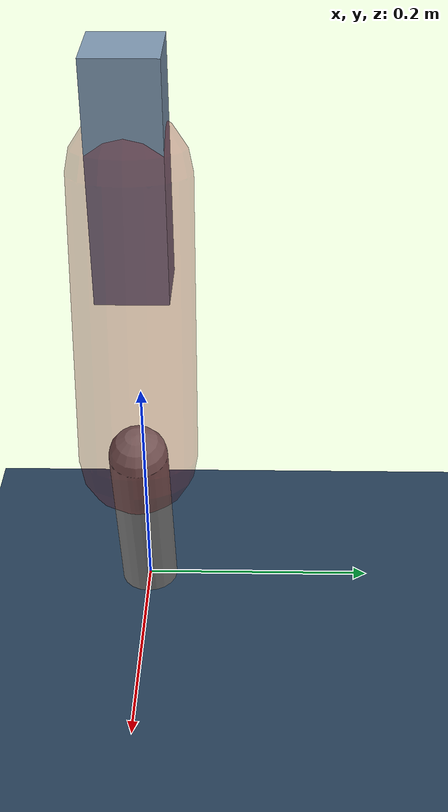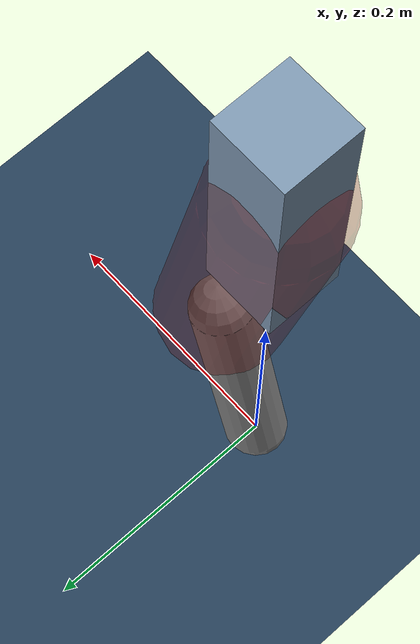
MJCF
<mujoco model="Hopper2D">
	<compiler inertiafromgeom="true" angle="radian" />
	<option timestep="0.001" integrator="implicit" cone="elliptic" solver="Newton" tolerance="1e-10" />

	<default>
		<geom contype="1" conaffinity="1" condim="3" friction="2 0.005 0.0001" solref="0.005 1" />
		<joint limited="true" damping="0.1" />
	</default>

	<asset>
		<texture name="skybox" type="skybox" builtin="gradient" rgb1=".4 .6 .8" rgb2="0 0 0" width="800" height="800" />
		<texture name="grid" type="2d" builtin="checker" rgb1=".1 .2 .3" rgb2=".2 .3 .4" width="300" height="300" mark="edge" markrgb=".2 .3 .4" />
		<material name="ground" texture="grid" texrepeat="1 1" texuniform="true" reflectance="0.1" />
		<material name="leg" rgba="0.5 0.6 0.7 1" />
	</asset>

	<worldbody>

		<geom name="floor" type="plane" size="5 5 0.25" material="ground" />

		<light directional="false" diffuse="0.8 0.8 0.8" specular="0.3 0.3 0.3" pos="0 0 2" dir="0 0 -1" />
		<light mode="targetbodycom" target="base" directional="false" diffuse="0.8 0.8 0.8" specular="0.3 0.3 0.3" pos="0 0 2" dir="0 0 -1" />

		<camera name="fixed" pos="0 -2 1" xyaxes="1 0 0 0 0 1" />
		<camera name="tracking" mode="trackcom" pos="0 -3 1" />

		<body name="root" pos="0 0 0.4006337909701452">
			<joint name="slide_x" type="slide" axis="1 0 0" range="-100 100" />
			<joint name="slide_z" type="slide" axis="0 0 1" range="0 10" />

			<body name="base" pos="0 0 0">
				<geom name="torso" type="box" size="0.03 0.03 0.1" mass="1.5739999999999998" material="leg" />

				<body name="link1" pos="0 0 0" euler="0 1.3844336999459772 0">
					<joint type="hinge" axis="0 -1 0" pos="0 0 0" name="hinge1" limited="true" range="-3.14 3.14" stiffness="0" damping="0.1" />
					<geom name="thigh" type="capsule" fromto="0 0 0 0.2394942521511559 0 0" size="0.05" rgba="0.5 0 0 0.3" mass="0.8292850555930054" />

					<body name="link2" pos="0.2394942521511559 0 0" euler="0 0.44865020876572426 0">
						<joint type="hinge" axis="0 -1 0" pos="0 0 0" name="hinge2" limited="true" range="-3.14 3.14" stiffness="0" damping="0.1" />
						<geom name="shank" type="capsule" fromto="0 0 0 0.17113953881898927 0 0" size="0.025" mass="0.37622558493709035" />

					</body>
				</body>
			</body>
		</body>
	</worldbody>

	<actuator>
		<motor name="torque1" joint="hinge1" ctrlrange="-54.55425579532779 54.55425579532779" ctrllimited="true" gear="1" />
		<motor name="torque2" joint="hinge2" ctrlrange="-13.949058688963687 13.949058688963687" ctrllimited="true" gear="1" />
	</actuator>
</mujoco>
